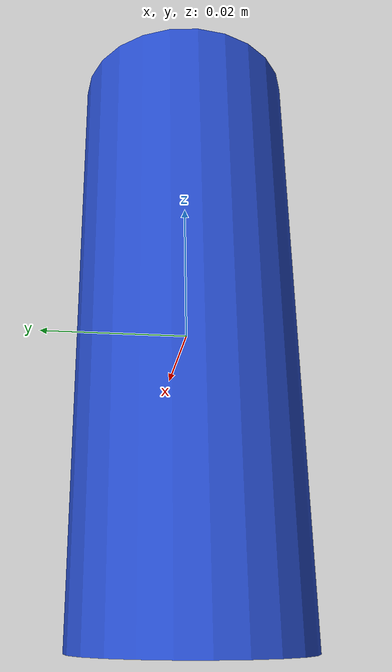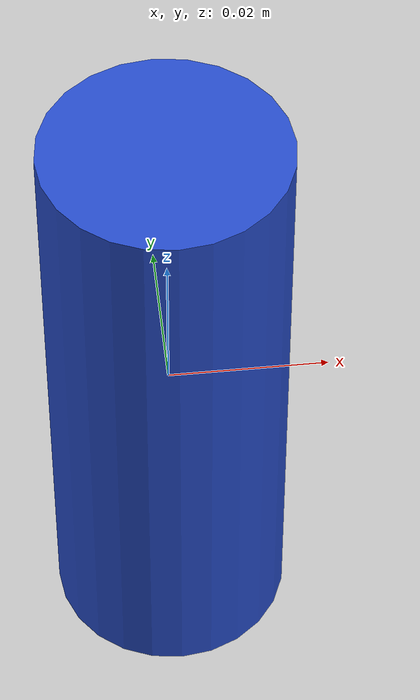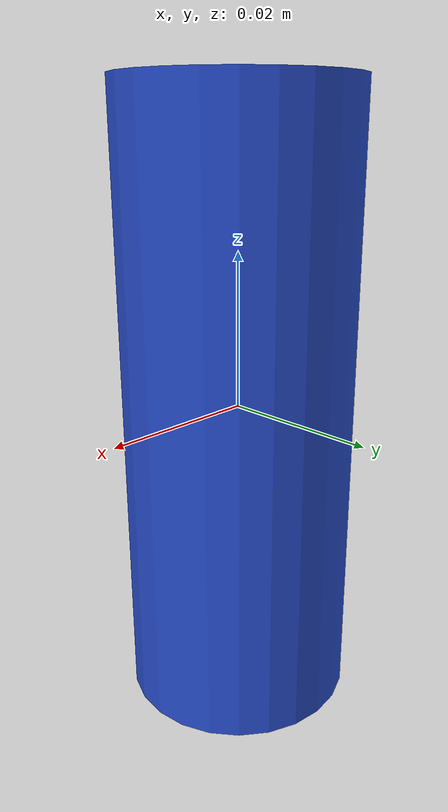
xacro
<?xml version="1.0"?>

<robot name="target_box">
  <link name="target_link_1">
    <inertial>
      <origin xyz="0 0 0" />
      <mass value="0.5" />
      <inertia  ixx="0.0006" ixy="0"  ixz="0"  iyy="0.0006"  iyz="0"  izz="0.0002"/>
    </inertial>
    <visual>
      <origin xyz="0 0 0"/>
      <geometry>
        <cylinder radius="0.015" length="0.08"/>
        <!--box size="0.10 0.10 0.25"/-->
      </geometry>
    </visual>
    <collision>
      <origin xyz="0 0 0"/>
      <geometry>
        <cylinder radius="0.015" length="0.08"/>
        <!--box size="0.10 0.10 0.25"/-->
      </geometry>
    </collision>
  </link>
  <gazebo reference="target_link_1">
    <material>Gazebo/Blue</material>
    <mu1>1.0</mu1>
    <mu2>1.0</mu2>
  </gazebo>
</robot>
